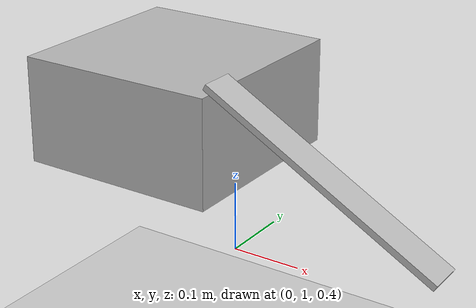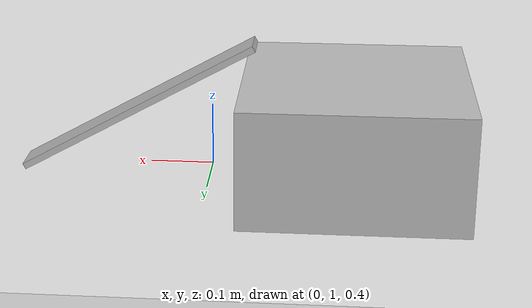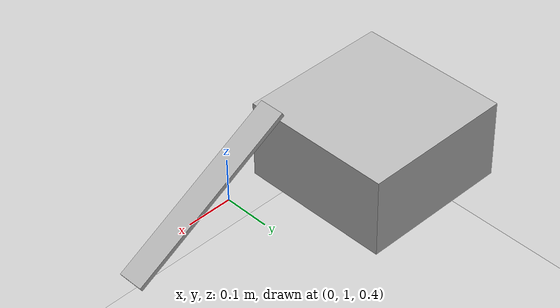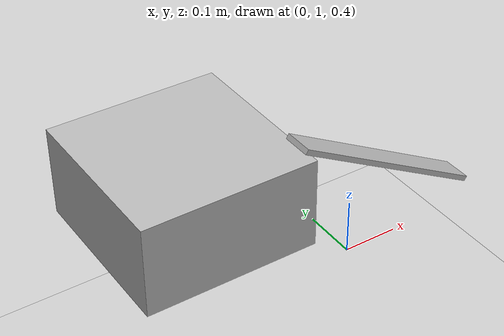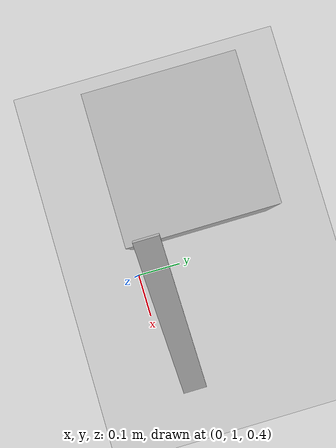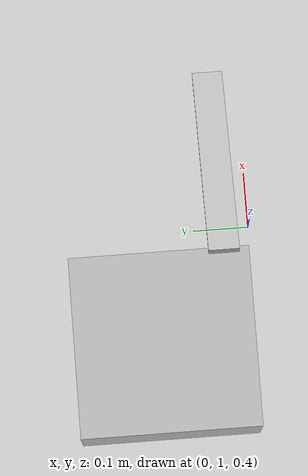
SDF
<?xml version="1.0" ?>

<sdf version="1.5">

  <world name="default">

    <gui>
      <camera name="user_default">
        <pose>-0.066 2.4337721 0.809377 0 0.068 -1.61</pose>
      </camera>
    </gui>

    <!-- A global light source -->
    <include>
      <uri>model://sun</uri>
    </include>

    <!-- A ground plane -->
    <include>
      <uri>model://ground_plane</uri>
    </include>

    <!-- A ramp -->
    <model name="ramp">
      <static>true</static>
      <pose>0.109236 1.053357 0.516205 0 0.5084 0</pose>
      <link name="ramp_link">
        <collision name="collision">
          <geometry>
            <box>
              <size>0.41 0.055 0.01</size>
            </box>
          </geometry>
        </collision>
        <visual name="visual">
          <geometry>
            <box>
              <size>0.41 0.055 0.01</size>
            </box>
          </geometry>
        </visual>
      </link>
    </model>

    <!-- A box -->
    <model name="box">
      <static>true</static>
      <pose>-0.2211 1.168897 0.521142 0 0 0</pose>
      <link name="box_link">
        <collision name="collision">
          <geometry>
            <box>
              <size>0.32 0.32 0.17</size>
            </box>
          </geometry>
        </collision>
        <visual name="visual">
          <geometry>
            <box>
              <size>0.32 0.32 0.17</size>
            </box>
          </geometry>
        </visual>
      </link>
    </model>

  </world>

</sdf>
